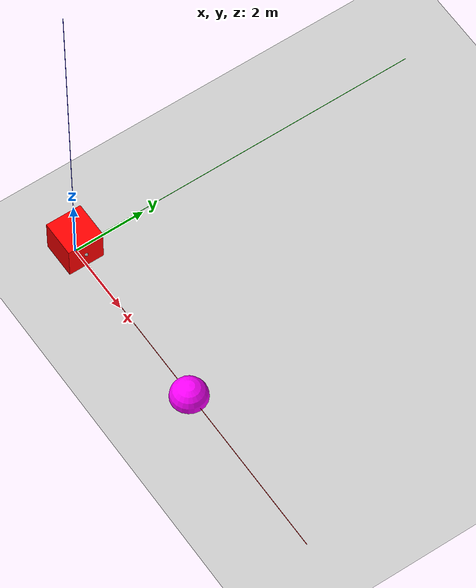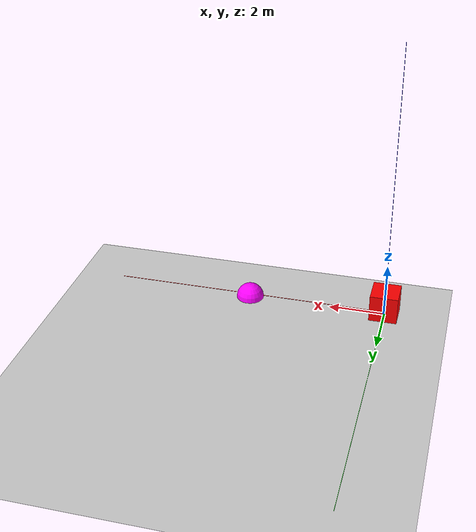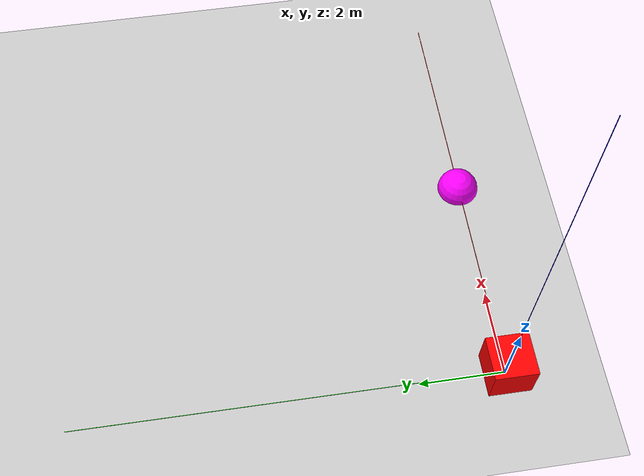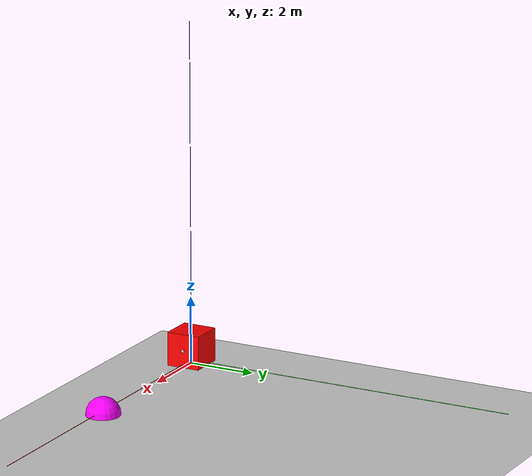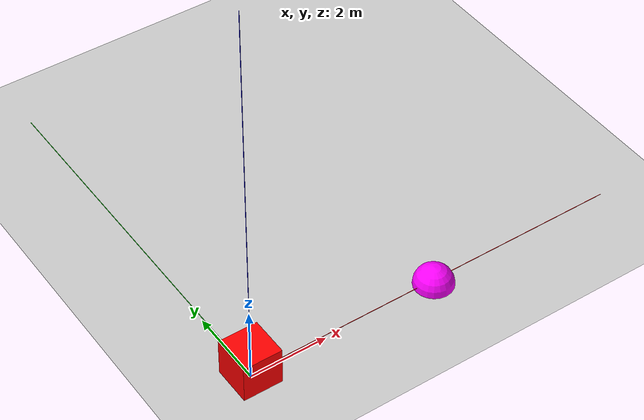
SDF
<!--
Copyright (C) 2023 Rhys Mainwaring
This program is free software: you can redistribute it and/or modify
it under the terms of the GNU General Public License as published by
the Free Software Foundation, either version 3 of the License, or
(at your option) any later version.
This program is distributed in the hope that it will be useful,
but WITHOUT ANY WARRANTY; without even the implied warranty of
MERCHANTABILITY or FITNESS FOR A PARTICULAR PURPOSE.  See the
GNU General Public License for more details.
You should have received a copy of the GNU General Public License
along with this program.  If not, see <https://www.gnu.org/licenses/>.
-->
<?xml version="1.0" ?>

<!--
  Update wind:

    gz topic -t /wind -m gz.msgs.Vector3d -p "x: 0, y: 10.0"

-->

<sdf version="1.9">
  <world name="default">

    <physics name="1ms" type="ignored">
      <max_step_size>0.001</max_step_size>
      <real_time_factor>1</real_time_factor>
    </physics>

    <plugin filename="gz-sim-physics-system"
      name="gz::sim::systems::Physics">
    </plugin>
    <plugin filename="gz-sim-sensors-system"
      name="gz::sim::systems::Sensors">
      <render_engine>ogre2</render_engine>
      <background_color>0.8 0.8 0.8</background_color>
    </plugin>
    <plugin filename="gz-sim-scene-broadcaster-system"
      name="gz::sim::systems::SceneBroadcaster">
    </plugin>
    <plugin filename="gz-sim-user-commands-system"
      name="gz::sim::systems::UserCommands">
    </plugin>
    <plugin filename="gz-sim-imu-system"
      name="gz::sim::systems::Imu">
    </plugin>

    <plugin filename="gz-sim-wind-effects-system"
      name="gz::sim::systems::WindEffects">
      <force_approximation_scaling_factor>10</force_approximation_scaling_factor>
    </plugin>
    <plugin filename="asv_sim2-wind-system"
      name="gz::sim::systems::Wind">
      <topic>/wind</topic>
    </plugin>

    <scene>
      <ambient>1.0 1.0 1.0</ambient>
      <background>0.8 0.8 0.8</background>
      <sky></sky>
    </scene>

    <spherical_coordinates>
      <latitude_deg>51.56730439904417</latitude_deg>
      <longitude_deg>-4.035240867824305</longitude_deg>
      <elevation>10.0</elevation>
      <heading_deg>0</heading_deg>
      <surface_model>EARTH_WGS84</surface_model>
    </spherical_coordinates>

    <light type="directional" name="sun">
      <cast_shadows>true</cast_shadows>
      <pose>0 0 10 0 0 0</pose>
      <diffuse>0.8 0.8 0.8 1</diffuse>
      <specular>0.6 0.6 0.6 1</specular>
      <direction>-0.5 0.1 -0.9</direction>
    </light>

    <wind>
      <linear_velocity>-10 -10 0</linear_velocity>
    </wind>

    <model name="ground_plane">
      <static>true</static>
      <pose>0 0 0 0 0 0</pose>
      <link name="link">
        <collision name="collision">
          <geometry>
            <plane>
              <normal>0 0 1</normal>
              <size>100 100</size>
            </plane>
          </geometry>
        </collision>
        <visual name="visual">
          <geometry>
            <plane>
              <normal>0 0 1</normal>
              <size>100 100</size>
            </plane>
          </geometry>
          <material>
            <ambient>0.8 0.8 0.8 1</ambient>
            <diffuse>0.8 0.8 0.8 1</diffuse>
            <specular>0.8 0.8 0.8 1</specular>
          </material>
        </visual>
      </link>
    </model>

    <model name="axes">
      <static>1</static>
      <link name="link">
        <visual name="r">
          <cast_shadows>0</cast_shadows>
          <pose>5 0 0.1 0 0 0</pose>
          <geometry>
            <box>
              <size>10 0.01 0.01</size>
            </box>
          </geometry>
          <material>
            <ambient>1 0 0 1</ambient>
            <diffuse>1 0 0 1</diffuse>
            <emissive>1 0 0 1</emissive>
            <specular>0.5 0.5 0.5 1</specular>
          </material>
        </visual>
        <visual name="g">
          <cast_shadows>0</cast_shadows>
          <pose>0 5 0.1 0 0 0</pose>
          <geometry>
            <box>
              <size>0.01 10 0.01</size>
            </box>
          </geometry>
          <material>
            <ambient>0 1 0 1</ambient>
            <diffuse>0 1 0 1</diffuse>
            <emissive>0 1 0 1</emissive>
            <specular>0.5 0.5 0.5 1</specular>
          </material>
        </visual>
        <visual name="b">
          <cast_shadows>0</cast_shadows>
          <pose>0 0 5.1 0 0 0</pose>
          <geometry>
            <box>
              <size>0.01 0.01 10</size>
            </box>
          </geometry>
          <material>
            <ambient>0 0 1 1</ambient>
            <diffuse>0 0 1 1</diffuse>
            <emissive>0 0 1 1</emissive>
            <specular>0.5 0.5 0.5 1</specular>
          </material>
        </visual>
      </link>
    </model>

    <!-- Location of the cable attachment point on the winch. -->
    <model name="winch_visual">
      <static>true</static>
      <pose>5 0 0 0 0 0</pose>
      <link name="link">
        <visual name="visual">
          <geometry>
            <sphere>
              <radius>0.5</radius>
            </sphere>
          </geometry>
          <material>
            <ambient>1 0 1 1</ambient>
            <diffuse>1 0 1 1</diffuse>
            <specular>0.1 0.1 0.1 1</specular>
          </material>
        </visual>
      </link>
    </model>

    <!-- Box attached by a cable to a winch. -->
    <model name="box">
      <pose>0 0 0.5 0 0 0</pose>
      <enable_wind>true</enable_wind>
      <link name="base_link">
        <inertial>
          <mass>10</mass>
          <inertia>
            <ixx>1.66</ixx>
            <ixy>0</ixy>
            <ixz>0</ixz>
            <iyy>1.66</iyy>
            <iyz>0</iyz>
            <izz>1.66</izz>
          </inertia>
        </inertial>
        <collision name="collision">
          <geometry>
            <box>
              <size>1 1 1</size>
            </box>
          </geometry>
        </collision>
        <visual name="visual">
          <geometry>
            <box>
              <size>1 1 1</size>
            </box>
          </geometry>
          <material>
            <ambient>1 0 0 1</ambient>
            <diffuse>1 0 0 1</diffuse>
            <specular>0.1 0.1 0.1 1</specular>
          </material>
        </visual>
      </link>
      <link name="bridle_link">
        <pose>0.5 0 0 0 0 0</pose>
        <inertial>
          <mass>1</mass>
          <inertia>
            <ixx>0.001000</ixx>
            <ixy>0</ixy>
            <ixz>0</ixz>
            <iyy>0.001000</iyy>
            <iyz>0</iyz>
            <izz>0.001000</izz>
          </inertia>
        </inertial>
        <collision name="collision">
          <geometry>
            <sphere>
              <radius>0.05</radius>
            </sphere>
          </geometry>
        </collision>
        <visual name="visual">
          <geometry>
            <sphere>
              <radius>0.05</radius>
            </sphere>
          </geometry>
          <material>
            <ambient>0.75 0.75 0.75 1</ambient>
            <diffuse>0.75 0.75 0.75 1</diffuse>
            <specular>0.5 0.5 0.5 1</specular>
          </material>
        </visual>
      </link>
      <joint name="bridle_joint" type="revolute">
        <child>bridle_link</child>
        <parent>base_link</parent>
        <axis>
          <xyz>0 0 1</xyz>
          <limit>
            <lower>0</lower>
            <upper>0</upper>
          </limit>
          <dynamics>
            <damping>1.0</damping>
          </dynamics>
        </axis>
      </joint>

      <plugin
        filename="asv_sim2-winch-system"
        name="gz::sim::systems::Winch">
        <link_name>bridle_link</link_name>
        <winch_position>5 0 0</winch_position>
        <cable_length>6.0</cable_length>
        <cable_length_min>1.0</cable_length_min>
        <cable_length_max>10.0</cable_length_max>

        <cable_mass_per_metre>1</cable_mass_per_metre>
      </plugin>
    </model>

  </world>
</sdf>
